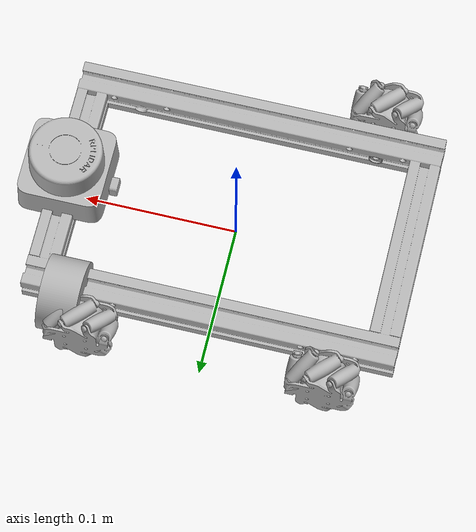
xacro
<?xml version="1.0"?>
<robot name="robot" xmlns:xacro="http://www.ros.org/wiki/xacro">

    <xacro:include filename="robot_core.xacro"/>
    <xacro:arg name="is_sim" default="true"/>

    <xacro:if value="$(arg is_sim)">
        <xacro:include filename="gazebo/gazebo.xacro"/>
        <xacro:include filename="gazebo/gazebo_control.xacro"/>
        <xacro:include filename="gazebo/lidar.xacro"/>
    </xacro:if>
    <xacro:unless value="$(arg is_sim)">
        <xacro:include filename="ros2_control.xacro"/>
    </xacro:unless>

</robot>

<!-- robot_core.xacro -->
<robot xmlns:xacro="http://www.ros.org/wiki/xacro">
    <xacro:include filename="$(find two_wheels_core)/urdf/materials.xacro"/>
    <link name="base_link">
        <inertial>
            <origin xyz="7.136447167432144e-05 3.453515765351803e-05 0.024408245184796683" rpy="0 0 0"/>
            <mass value="1.000593039456424"/>
            <inertia ixx="0.003708" iyy="0.007317" izz="0.010943" ixy="-0.0" iyz="-0.0" ixz="-0.0"/>
        </inertial>
        <visual>
            <origin xyz="0 0 0" rpy="0 0 0"/>
            <geometry>
                <mesh filename="file://$(find two_wheels_core)/urdf/meshes/base_link.stl" scale="0.001 0.001 0.001"/>
            </geometry>
            <material name="silver"/>
        </visual>
        <collision>
            <origin xyz="0 0 0" rpy="0 0 0"/>
            <geometry>
                <mesh filename="file://$(find two_wheels_core)/urdf/meshes/base_link.stl" scale="0.001 0.001 0.001"/>
            </geometry>
        </collision>
    </link>

    <link name="front_left_wheel">
        <inertial>
            <origin xyz="1.625960121487413e-06 -0.03356595189466297 -1.9609319341917786e-09" rpy="0 0 0"/>
            <mass value="0.21820489062799583"/>
            <inertia ixx="3.8e-05" iyy="4.8e-05" izz="3.8e-05" ixy="0.0" iyz="0.0" ixz="0.0"/>
        </inertial>
        <visual>
            <origin xyz="0.077933 0.059968 -0.023743" rpy="0 0 0"/>
            <geometry>
                <mesh filename="file://$(find two_wheels_core)/urdf/meshes/front_left_wheel.stl"
                      scale="0.001 0.001 0.001"/>
            </geometry>
            <material name="silver"/>
        </visual>
        <collision>
            <origin xyz="0.077933 0.059968 -0.023743" rpy="0 0 0"/>
            <geometry>
                <mesh filename="file://$(find two_wheels_core)/urdf/meshes/front_left_wheel.stl"
                      scale="0.001 0.001 0.001"/>
            </geometry>
        </collision>
    </link>

    <link name="rear_left_wheel">
        <inertial>
            <origin xyz="1.3407781088436987e-06 -0.03356595189466117 -1.9609318023527944e-09" rpy="0 0 0"/>
            <mass value="0.2182048906279955"/>
            <inertia ixx="3.8e-05" iyy="4.8e-05" izz="3.8e-05" ixy="0.0" iyz="0.0" ixz="0.0"/>
        </inertial>
        <visual>
            <origin xyz="-0.077933 0.059968 -0.023743" rpy="0 0 0"/>
            <geometry>
                <mesh filename="file://$(find two_wheels_core)/urdf/meshes/rear_left_wheel.stl"
                      scale="0.001 0.001 0.001"/>
            </geometry>
            <material name="silver"/>
        </visual>
        <collision>
            <origin xyz="-0.077933 0.059968 -0.023743" rpy="0 0 0"/>
            <geometry>
                <mesh filename="file://$(find two_wheels_core)/urdf/meshes/rear_left_wheel.stl"
                      scale="0.001 0.001 0.001"/>
            </geometry>
        </collision>
    </link>

    <link name="rear_right_wheel">
        <inertial>
            <origin xyz="1.4899030495729715e-06 0.03356602362407317 3.1974513525767634e-07" rpy="0 0 0"/>
            <mass value="0.2182048906279955"/>
            <inertia ixx="3.8e-05" iyy="4.8e-05" izz="3.8e-05" ixy="-0.0" iyz="0.0" ixz="-0.0"/>
        </inertial>
        <visual>
            <origin xyz="-0.077931 -0.060032 -0.023742" rpy="0 0 0"/>
            <geometry>
                <mesh filename="file://$(find two_wheels_core)/urdf/meshes/rear_right_wheel.stl"
                      scale="0.001 0.001 0.001"/>
            </geometry>
            <material name="silver"/>
        </visual>
        <collision>
            <origin xyz="-0.077931 -0.060032 -0.023742" rpy="0 0 0"/>
            <geometry>
                <mesh filename="file://$(find two_wheels_core)/urdf/meshes/rear_right_wheel.stl"
                      scale="0.001 0.001 0.001"/>
            </geometry>
        </collision>
    </link>

    <link name="front_right_wheel">
        <inertial>
            <origin xyz="-1.489903047255381e-06 0.033566023624073626 8.554326641832533e-08" rpy="0 0 0"/>
            <mass value="0.2182048906279955"/>
            <inertia ixx="3.8e-05" iyy="4.8e-05" izz="3.8e-05" ixy="0.0" iyz="-0.0" ixz="-0.0"/>
        </inertial>
        <visual>
            <origin xyz="0.077931 -0.060032 -0.023742" rpy="0 0 0"/>
            <geometry>
                <mesh filename="file://$(find two_wheels_core)/urdf/meshes/front_right_wheel.stl"
                      scale="0.001 0.001 0.001"/>
            </geometry>
            <material name="silver"/>
        </visual>
        <collision>
            <origin xyz="0.077931 -0.060032 -0.023742" rpy="0 0 0"/>
            <geometry>
                <mesh filename="file://$(find two_wheels_core)/urdf/meshes/front_right_wheel.stl"
                      scale="0.001 0.001 0.001"/>
            </geometry>
        </collision>
    </link>

    <joint name="front_left_wheel_joint" type="continuous">
        <origin xyz="-0.077933 -0.059968 0.023743" rpy="0 0 0"/>
        <parent link="base_link"/>
        <child link="front_left_wheel"/>
        <axis xyz="0.0 1.0 0.0"/>
    </joint>

    <joint name="rear_left_wheel_joint" type="continuous">
        <origin xyz="0.077933 -0.059968 0.023743" rpy="0 0 0"/>
        <parent link="base_link"/>
        <child link="rear_left_wheel"/>
        <axis xyz="0.0 1.0 0.0"/>
    </joint>

    <joint name="rear_right_wheel_joint" type="continuous">
        <origin xyz="0.077931 0.060032 0.023742" rpy="0 0 0"/>
        <parent link="base_link"/>
        <child link="rear_right_wheel"/>
        <axis xyz="0.0 1.0 0.0"/>
    </joint>

    <joint name="front_right_wheel_joint" type="continuous">
        <origin xyz="-0.077931 0.060032 0.023742" rpy="0 0 0"/>
        <parent link="base_link"/>
        <child link="front_right_wheel"/>
        <axis xyz="0.0 1.0 0.0"/>
    </joint>

    <link name="lidar_link">
        <inertial>
            <origin xyz="-0.00011530732368342234 3.558559248059221e-06 0.017945212221916012" rpy="0 0 0"/>
            <mass value="0.7886321015037847"/>
            <inertia ixx="0.000269" iyy="0.000272" izz="0.000333" ixy="0.0" iyz="0.0" ixz="-1e-06"/>
        </inertial>
        <visual>
            <origin xyz="-0.11007 -3.2e-05 -0.028463" rpy="0 0 0"/>
            <geometry>
                <mesh filename="file://$(find two_wheels_core_description)/meshes/lidar_link.stl"
                      scale="0.001 0.001 0.001"/>
            </geometry>
            <material name="silver"/>
        </visual>
        <collision>
            <origin xyz="-0.11007 -3.2e-05 -0.028463" rpy="0 0 0"/>
            <geometry>
                <mesh filename="file://$(find two_wheels_core_description)/meshes/lidar_link.stl"
                      scale="0.001 0.001 0.001"/>
            </geometry>
        </collision>
    </link>

    <joint name="lidar_link_joint" type="fixed">
        <origin xyz="0.11007 3.2e-05 0.028463" rpy="0 0 0"/>
        <parent link="base_link"/>
        <child link="lidar_link"/>
    </joint>

    <link name="base_footprint"/>

    <joint name="base_footprint_joint" type="fixed">
        <parent link="base_link"/>
        <child link="base_footprint"/>
        <origin xyz="0 0 0" rpy="0 0 0"/>
    </joint>

</robot>

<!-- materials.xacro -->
<robot name="two_wheels_core" xmlns:xacro="http://www.ros.org/wiki/xacro">

    <material name="silver">
        <color rgba="0.700 0.700 0.700 1.000"/>
    </material>

    <material name="black">
        <color rgba="0.0 0.0 0.0 1.000"/>
    </material>

</robot>

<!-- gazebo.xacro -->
<robot xmlns:xacro="http://www.ros.org/wiki/xacro">
    <xacro:property name="body_color" value="Gazebo/Silver"/>

    <gazebo reference="base_link">
        <material>${body_color}</material>
        <mu1>0.2</mu1>
        <mu2>0.2</mu2>
        <self_collide>true</self_collide>
        <gravity>true</gravity>
    </gazebo>

    <gazebo reference="front_left_wheel">
        <material>${body_color}</material>
        <mu1>0.2</mu1>
        <mu2>0.2</mu2>
        <self_collide>true</self_collide>
    </gazebo>

    <gazebo reference="rear_left_wheel">
        <material>${body_color}</material>
        <mu1>0.2</mu1>
        <mu2>0.2</mu2>
        <self_collide>true</self_collide>
    </gazebo>

    <gazebo reference="rear_right_wheel">
        <material>${body_color}</material>
        <mu1>0.2</mu1>
        <mu2>0.2</mu2>
        <self_collide>true</self_collide>
    </gazebo>

    <gazebo reference="front_right_wheel">
        <material>${body_color}</material>
        <mu1>0.2</mu1>
        <mu2>0.2</mu2>
        <self_collide>true</self_collide>
    </gazebo>

    <gazebo reference="lidar_link">
        <material>${body_color}</material>
        <mu1>0.2</mu1>
        <mu2>0.2</mu2>
        <self_collide>true</self_collide>
    </gazebo>
</robot>
